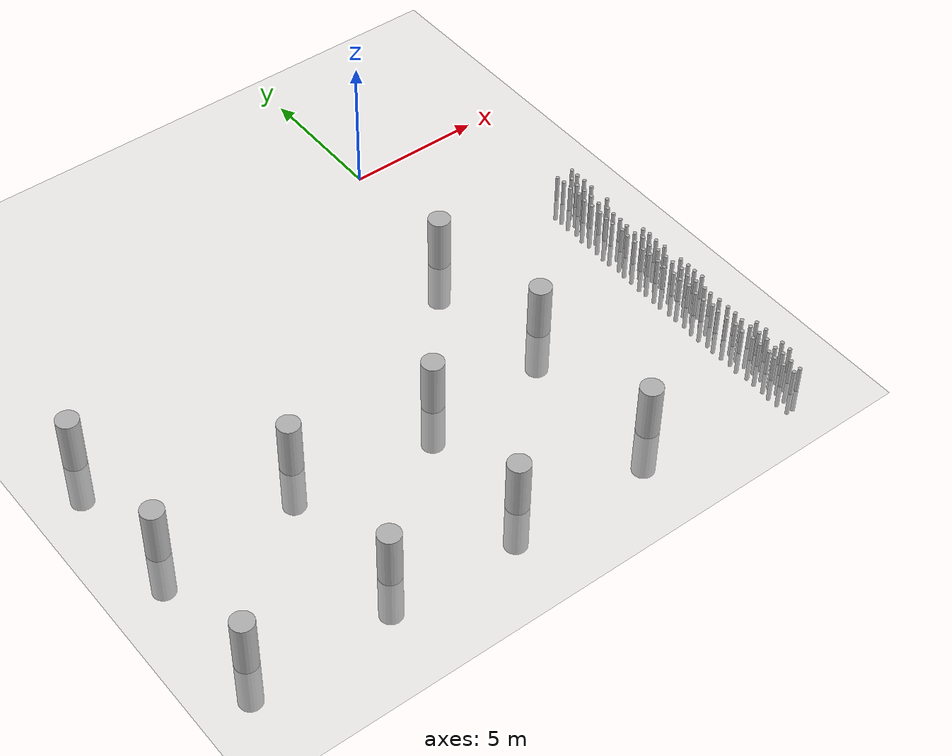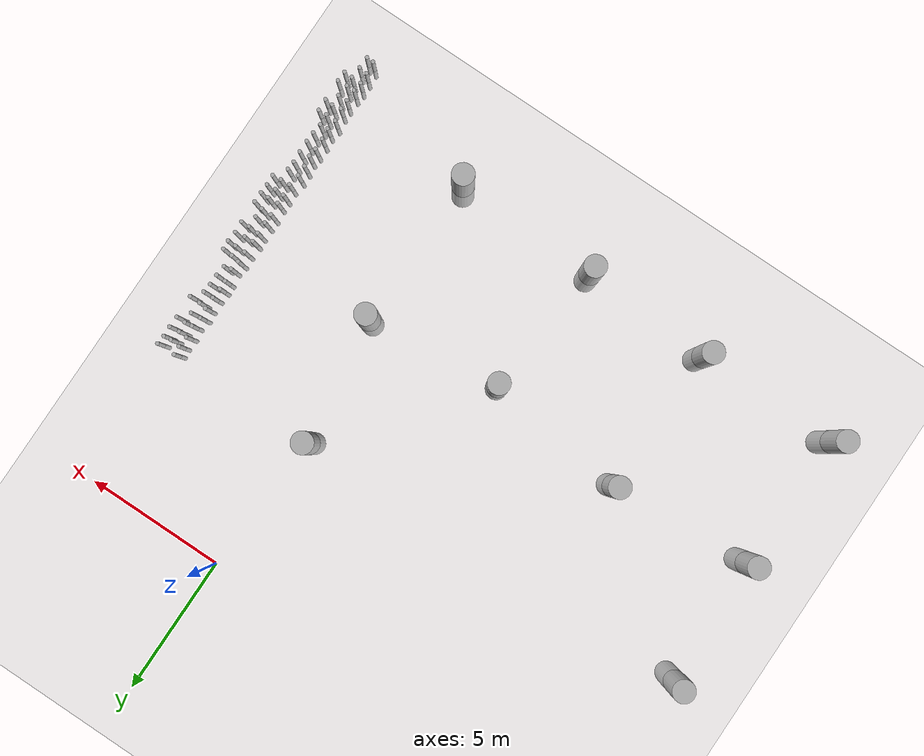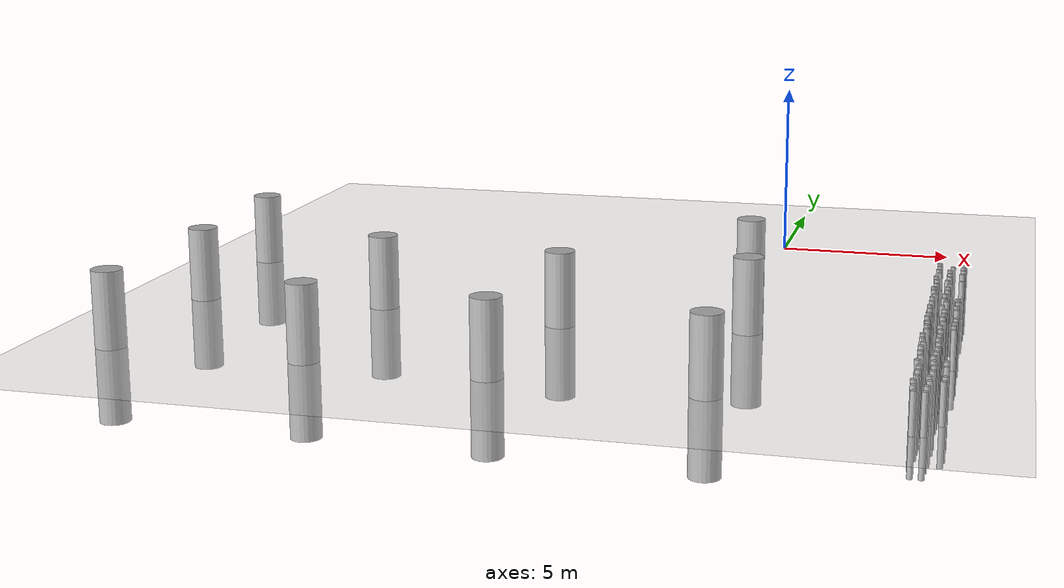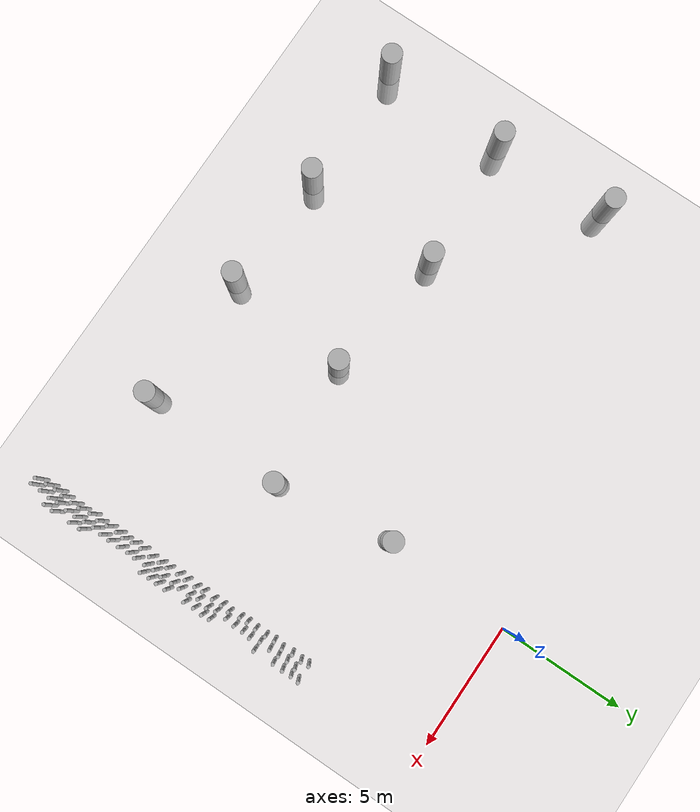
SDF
<sdf version="1.7">
 <world name="farmland_world">
  <model name="ground_plane">
   <static>1</static>
   <link name="link">
    <collision name="collision">
     <geometry><plane><normal>0 0 1</normal><size>40.0 40.0</size></plane></geometry>
     <surface><friction><ode><mu>100</mu><mu2>50</mu2></ode></friction></surface>
    </collision>
    <visual name="visual">
     <cast_shadows>0</cast_shadows>
     <geometry><plane><normal>0 0 1</normal><size>40.0 40.0</size></plane></geometry>
     <material>
      <script><uri>file://media/materials/scripts/gazebo.material</uri><name>Gazebo/Grey</name></script>
     </material>
    </visual>
   </link>
  </model>
  <model name="tree_1_0">
   <static>1</static>
   <link name="link">
    <collision name="collision">
     <geometry><cylinder><radius>0.4</radius><length>4.0</length></cylinder></geometry>
     <surface><friction><ode><mu>100</mu><mu2>50</mu2></ode></friction></surface>
    </collision>
    <visual name="visual">
     <geometry><cylinder><radius>0.4</radius><length>4.0</length></cylinder></geometry>
    </visual>
   </link>
   <pose>0.2540669946374212 -15.38786394240226 0 0 0 1.5707963267948966</pose>
  </model>
  <model name="tree_1_1">
   <static>1</static>
   <link name="link">
    <collision name="collision">
     <geometry><cylinder><radius>0.4</radius><length>4.0</length></cylinder></geometry>
     <surface><friction><ode><mu>100</mu><mu2>50</mu2></ode></friction></surface>
    </collision>
    <visual name="visual">
     <geometry><cylinder><radius>0.4</radius><length>4.0</length></cylinder></geometry>
    </visual>
   </link>
   <pose>-5.051842792831774 -15.291867667403281 0 0 0 1.5707963267948966</pose>
  </model>
  <model name="tree_1_2">
   <static>1</static>
   <link name="link">
    <collision name="collision">
     <geometry><cylinder><radius>0.4</radius><length>4.0</length></cylinder></geometry>
     <surface><friction><ode><mu>100</mu><mu2>50</mu2></ode></friction></surface>
    </collision>
    <visual name="visual">
     <geometry><cylinder><radius>0.4</radius><length>4.0</length></cylinder></geometry>
    </visual>
   </link>
   <pose>-9.82998977859006 -15.08229638216011 0 0 0 1.5707963267948966</pose>
  </model>
  <model name="tree_1_3">
   <static>1</static>
   <link name="link">
    <collision name="collision">
     <geometry><cylinder><radius>0.4</radius><length>4.0</length></cylinder></geometry>
     <surface><friction><ode><mu>100</mu><mu2>50</mu2></ode></friction></surface>
    </collision>
    <visual name="visual">
     <geometry><cylinder><radius>0.4</radius><length>4.0</length></cylinder></geometry>
    </visual>
   </link>
   <pose>-15.065093844090462 -15.095315168979154 0 0 0 1.5707963267948966</pose>
  </model>
  <model name="tree_1_4">
   <static>1</static>
   <link name="link">
    <collision name="collision">
     <geometry><cylinder><radius>0.4</radius><length>4.0</length></cylinder></geometry>
     <surface><friction><ode><mu>100</mu><mu2>50</mu2></ode></friction></surface>
    </collision>
    <visual name="visual">
     <geometry><cylinder><radius>0.4</radius><length>4.0</length></cylinder></geometry>
    </visual>
   </link>
   <pose>0.3341858291401403 -9.767742681914724 0 0 0 1.5707963267948966</pose>
  </model>
  <model name="tree_1_5">
   <static>1</static>
   <link name="link">
    <collision name="collision">
     <geometry><cylinder><radius>0.4</radius><length>4.0</length></cylinder></geometry>
     <surface><friction><ode><mu>100</mu><mu2>50</mu2></ode></friction></surface>
    </collision>
    <visual name="visual">
     <geometry><cylinder><radius>0.4</radius><length>4.0</length></cylinder></geometry>
    </visual>
   </link>
   <pose>-4.568847083646271 -10.325073099994544 0 0 0 1.5707963267948966</pose>
  </model>
  <model name="tree_1_6">
   <static>1</static>
   <link name="link">
    <collision name="collision">
     <geometry><cylinder><radius>0.4</radius><length>4.0</length></cylinder></geometry>
     <surface><friction><ode><mu>100</mu><mu2>50</mu2></ode></friction></surface>
    </collision>
    <visual name="visual">
     <geometry><cylinder><radius>0.4</radius><length>4.0</length></cylinder></geometry>
    </visual>
   </link>
   <pose>-9.728997222041995 -9.698990593612 0 0 0 1.5707963267948966</pose>
  </model>
  <model name="tree_1_7">
   <static>1</static>
   <link name="link">
    <collision name="collision">
     <geometry><cylinder><radius>0.4</radius><length>4.0</length></cylinder></geometry>
     <surface><friction><ode><mu>100</mu><mu2>50</mu2></ode></friction></surface>
    </collision>
    <visual name="visual">
     <geometry><cylinder><radius>0.4</radius><length>4.0</length></cylinder></geometry>
    </visual>
   </link>
   <pose>-14.920578026793763 -10.0460575825015 0 0 0 1.5707963267948966</pose>
  </model>
  <model name="tree_1_8">
   <static>1</static>
   <link name="link">
    <collision name="collision">
     <geometry><cylinder><radius>0.4</radius><length>4.0</length></cylinder></geometry>
     <surface><friction><ode><mu>100</mu><mu2>50</mu2></ode></friction></surface>
    </collision>
    <visual name="visual">
     <geometry><cylinder><radius>0.4</radius><length>4.0</length></cylinder></geometry>
    </visual>
   </link>
   <pose>-0.3144932957957587 -5.122929289410163 0 0 0 1.5707963267948966</pose>
  </model>
  <model name="tree_1_11">
   <static>1</static>
   <link name="link">
    <collision name="collision">
     <geometry><cylinder><radius>0.4</radius><length>4.0</length></cylinder></geometry>
     <surface><friction><ode><mu>100</mu><mu2>50</mu2></ode></friction></surface>
    </collision>
    <visual name="visual">
     <geometry><cylinder><radius>0.4</radius><length>4.0</length></cylinder></geometry>
    </visual>
   </link>
   <pose>-15.086728282497244 -5.36786975470952 0 0 0 1.5707963267948966</pose>
  </model>
  <model name="tree_3_8">
   <static>1</static>
   <link name="link">
    <collision name="collision">
     <geometry><cylinder><radius>0.07</radius><length>2.0</length></cylinder></geometry>
     <surface><friction><ode><mu>100</mu><mu2>50</mu2></ode></friction></surface>
    </collision>
    <visual name="visual">
     <geometry><cylinder><radius>0.07</radius><length>2.0</length></cylinder></geometry>
    </visual>
   </link>
   <pose>4.999346822458375 -5.117888623179846 0 0 0 0</pose>
  </model>
  <model name="tree_3_9">
   <static>1</static>
   <link name="link">
    <collision name="collision">
     <geometry><cylinder><radius>0.07</radius><length>2.0</length></cylinder></geometry>
     <surface><friction><ode><mu>100</mu><mu2>50</mu2></ode></friction></surface>
    </collision>
    <visual name="visual">
     <geometry><cylinder><radius>0.07</radius><length>2.0</length></cylinder></geometry>
    </visual>
   </link>
   <pose>5.0233898209033025 -5.432092514143336 0 0 0 0</pose>
  </model>
  <model name="tree_3_10">
   <static>1</static>
   <link name="link">
    <collision name="collision">
     <geometry><cylinder><radius>0.07</radius><length>2.0</length></cylinder></geometry>
     <surface><friction><ode><mu>100</mu><mu2>50</mu2></ode></friction></surface>
    </collision>
    <visual name="visual">
     <geometry><cylinder><radius>0.07</radius><length>2.0</length></cylinder></geometry>
    </visual>
   </link>
   <pose>4.994291506147252 -5.823625055868227 0 0 0 0</pose>
  </model>
  <model name="tree_3_11">
   <static>1</static>
   <link name="link">
    <collision name="collision">
     <geometry><cylinder><radius>0.07</radius><length>2.0</length></cylinder></geometry>
     <surface><friction><ode><mu>100</mu><mu2>50</mu2></ode></friction></surface>
    </collision>
    <visual name="visual">
     <geometry><cylinder><radius>0.07</radius><length>2.0</length></cylinder></geometry>
    </visual>
   </link>
   <pose>5.0497059251139635 -6.242002284667855 0 0 0 0</pose>
  </model>
  <model name="tree_3_12">
   <static>1</static>
   <link name="link">
    <collision name="collision">
     <geometry><cylinder><radius>0.07</radius><length>2.0</length></cylinder></geometry>
     <surface><friction><ode><mu>100</mu><mu2>50</mu2></ode></friction></surface>
    </collision>
    <visual name="visual">
     <geometry><cylinder><radius>0.07</radius><length>2.0</length></cylinder></geometry>
    </visual>
   </link>
   <pose>4.97458573716142 -6.619090289960563 0 0 0 0</pose>
  </model>
  <model name="tree_3_13">
   <static>1</static>
   <link name="link">
    <collision name="collision">
     <geometry><cylinder><radius>0.07</radius><length>2.0</length></cylinder></geometry>
     <surface><friction><ode><mu>100</mu><mu2>50</mu2></ode></friction></surface>
    </collision>
    <visual name="visual">
     <geometry><cylinder><radius>0.07</radius><length>2.0</length></cylinder></geometry>
    </visual>
   </link>
   <pose>5.011115408017612 -6.979648178607706 0 0 0 0</pose>
  </model>
  <model name="tree_3_14">
   <static>1</static>
   <link name="link">
    <collision name="collision">
     <geometry><cylinder><radius>0.07</radius><length>2.0</length></cylinder></geometry>
     <surface><friction><ode><mu>100</mu><mu2>50</mu2></ode></friction></surface>
    </collision>
    <visual name="visual">
     <geometry><cylinder><radius>0.07</radius><length>2.0</length></cylinder></geometry>
    </visual>
   </link>
   <pose>5.007831291233298 -7.414810000429624 0 0 0 0</pose>
  </model>
  <model name="tree_3_15">
   <static>1</static>
   <link name="link">
    <collision name="collision">
     <geometry><cylinder><radius>0.07</radius><length>2.0</length></cylinder></geometry>
     <surface><friction><ode><mu>100</mu><mu2>50</mu2></ode></friction></surface>
    </collision>
    <visual name="visual">
     <geometry><cylinder><radius>0.07</radius><length>2.0</length></cylinder></geometry>
    </visual>
   </link>
   <pose>4.972915663874423 -7.78935166714598 0 0 0 0</pose>
  </model>
  <model name="tree_3_16">
   <static>1</static>
   <link name="link">
    <collision name="collision">
     <geometry><cylinder><radius>0.07</radius><length>2.0</length></cylinder></geometry>
     <surface><friction><ode><mu>100</mu><mu2>50</mu2></ode></friction></surface>
    </collision>
    <visual name="visual">
     <geometry><cylinder><radius>0.07</radius><length>2.0</length></cylinder></geometry>
    </visual>
   </link>
   <pose>4.984007666288333 -8.108426710210507 0 0 0 0</pose>
  </model>
  <model name="tree_3_17">
   <static>1</static>
   <link name="link">
    <collision name="collision">
     <geometry><cylinder><radius>0.07</radius><length>2.0</length></cylinder></geometry>
     <surface><friction><ode><mu>100</mu><mu2>50</mu2></ode></friction></surface>
    </collision>
    <visual name="visual">
     <geometry><cylinder><radius>0.07</radius><length>2.0</length></cylinder></geometry>
    </visual>
   </link>
   <pose>5.04829961444361 -8.557682776209393 0 0 0 0</pose>
  </model>
  <model name="tree_3_18">
   <static>1</static>
   <link name="link">
    <collision name="collision">
     <geometry><cylinder><radius>0.07</radius><length>2.0</length></cylinder></geometry>
     <surface><friction><ode><mu>100</mu><mu2>50</mu2></ode></friction></surface>
    </collision>
    <visual name="visual">
     <geometry><cylinder><radius>0.07</radius><length>2.0</length></cylinder></geometry>
    </visual>
   </link>
   <pose>4.990040240308751 -8.894895072469216 0 0 0 0</pose>
  </model>
  <model name="tree_3_19">
   <static>1</static>
   <link name="link">
    <collision name="collision">
     <geometry><cylinder><radius>0.07</radius><length>2.0</length></cylinder></geometry>
     <surface><friction><ode><mu>100</mu><mu2>50</mu2></ode></friction></surface>
    </collision>
    <visual name="visual">
     <geometry><cylinder><radius>0.07</radius><length>2.0</length></cylinder></geometry>
    </visual>
   </link>
   <pose>4.995447982326307 -9.282934316098306 0 0 0 0</pose>
  </model>
  <model name="tree_3_20">
   <static>1</static>
   <link name="link">
    <collision name="collision">
     <geometry><cylinder><radius>0.07</radius><length>2.0</length></cylinder></geometry>
     <surface><friction><ode><mu>100</mu><mu2>50</mu2></ode></friction></surface>
    </collision>
    <visual name="visual">
     <geometry><cylinder><radius>0.07</radius><length>2.0</length></cylinder></geometry>
    </visual>
   </link>
   <pose>4.970099136664407 -9.729626298001653 0 0 0 0</pose>
  </model>
  <model name="tree_3_21">
   <static>1</static>
   <link name="link">
    <collision name="collision">
     <geometry><cylinder><radius>0.07</radius><length>2.0</length></cylinder></geometry>
     <surface><friction><ode><mu>100</mu><mu2>50</mu2></ode></friction></surface>
    </collision>
    <visual name="visual">
     <geometry><cylinder><radius>0.07</radius><length>2.0</length></cylinder></geometry>
    </visual>
   </link>
   <pose>4.991530070331363 -10.055534574343481 0 0 0 0</pose>
  </model>
  <model name="tree_3_22">
   <static>1</static>
   <link name="link">
    <collision name="collision">
     <geometry><cylinder><radius>0.07</radius><length>2.0</length></cylinder></geometry>
     <surface><friction><ode><mu>100</mu><mu2>50</mu2></ode></friction></surface>
    </collision>
    <visual name="visual">
     <geometry><cylinder><radius>0.07</radius><length>2.0</length></cylinder></geometry>
    </visual>
   </link>
   <pose>4.984498523004487 -10.477624777847547 0 0 0 0</pose>
  </model>
  <model name="tree_3_23">
   <static>1</static>
   <link name="link">
    <collision name="collision">
     <geometry><cylinder><radius>0.07</radius><length>2.0</length></cylinder></geometry>
     <surface><friction><ode><mu>100</mu><mu2>50</mu2></ode></friction></surface>
    </collision>
    <visual name="visual">
     <geometry><cylinder><radius>0.07</radius><length>2.0</length></cylinder></geometry>
    </visual>
   </link>
   <pose>4.96801317017482 -10.818968923391138 0 0 0 0</pose>
  </model>
  <model name="tree_3_24">
   <static>1</static>
   <link name="link">
    <collision name="collision">
     <geometry><cylinder><radius>0.07</radius><length>2.0</length></cylinder></geometry>
     <surface><friction><ode><mu>100</mu><mu2>50</mu2></ode></friction></surface>
    </collision>
    <visual name="visual">
     <geometry><cylinder><radius>0.07</radius><length>2.0</length></cylinder></geometry>
    </visual>
   </link>
   <pose>5.0032470985808475 -11.265103971879112 0 0 0 0</pose>
  </model>
  <model name="tree_3_25">
   <static>1</static>
   <link name="link">
    <collision name="collision">
     <geometry><cylinder><radius>0.07</radius><length>2.0</length></cylinder></geometry>
     <surface><friction><ode><mu>100</mu><mu2>50</mu2></ode></friction></surface>
    </collision>
    <visual name="visual">
     <geometry><cylinder><radius>0.07</radius><length>2.0</length></cylinder></geometry>
    </visual>
   </link>
   <pose>4.997418522056089 -11.601864335592976 0 0 0 0</pose>
  </model>
  <model name="tree_3_26">
   <static>1</static>
   <link name="link">
    <collision name="collision">
     <geometry><cylinder><radius>0.07</radius><length>2.0</length></cylinder></geometry>
     <surface><friction><ode><mu>100</mu><mu2>50</mu2></ode></friction></surface>
    </collision>
    <visual name="visual">
     <geometry><cylinder><radius>0.07</radius><length>2.0</length></cylinder></geometry>
    </visual>
   </link>
   <pose>5.025079420664147 -12.008580229304183 0 0 0 0</pose>
  </model>
  <model name="tree_3_27">
   <static>1</static>
   <link name="link">
    <collision name="collision">
     <geometry><cylinder><radius>0.07</radius><length>2.0</length></cylinder></geometry>
     <surface><friction><ode><mu>100</mu><mu2>50</mu2></ode></friction></surface>
    </collision>
    <visual name="visual">
     <geometry><cylinder><radius>0.07</radius><length>2.0</length></cylinder></geometry>
    </visual>
   </link>
   <pose>4.956278513814736 -12.42666884954331 0 0 0 0</pose>
  </model>
  <model name="tree_3_28">
   <static>1</static>
   <link name="link">
    <collision name="collision">
     <geometry><cylinder><radius>0.07</radius><length>2.0</length></cylinder></geometry>
     <surface><friction><ode><mu>100</mu><mu2>50</mu2></ode></friction></surface>
    </collision>
    <visual name="visual">
     <geometry><cylinder><radius>0.07</radius><length>2.0</length></cylinder></geometry>
    </visual>
   </link>
   <pose>4.961890367560947 -12.80278903983509 0 0 0 0</pose>
  </model>
  <model name="tree_3_29">
   <static>1</static>
   <link name="link">
    <collision name="collision">
     <geometry><cylinder><radius>0.07</radius><length>2.0</length></cylinder></geometry>
     <surface><friction><ode><mu>100</mu><mu2>50</mu2></ode></friction></surface>
    </collision>
    <visual name="visual">
     <geometry><cylinder><radius>0.07</radius><length>2.0</length></cylinder></geometry>
    </visual>
   </link>
   <pose>5.021302931288229 -13.184394870217396 0 0 0 0</pose>
  </model>
  <model name="tree_3_30">
   <static>1</static>
   <link name="link">
    <collision name="collision">
     <geometry><cylinder><radius>0.07</radius><length>2.0</length></cylinder></geometry>
     <surface><friction><ode><mu>100</mu><mu2>50</mu2></ode></friction></surface>
    </collision>
    <visual name="visual">
     <geometry><cylinder><radius>0.07</radius><length>2.0</length></cylinder></geometry>
    </visual>
   </link>
   <pose>4.979685329325851 -13.494809803908115 0 0 0 0</pose>
  </model>
  <model name="tree_3_31">
   <static>1</static>
   <link name="link">
    <collision name="collision">
     <geometry><cylinder><radius>0.07</radius><length>2.0</length></cylinder></geometry>
     <surface><friction><ode><mu>100</mu><mu2>50</mu2></ode></friction></surface>
    </collision>
    <visual name="visual">
     <geometry><cylinder><radius>0.07</radius><length>2.0</length></cylinder></geometry>
    </visual>
   </link>
   <pose>4.987538303684851 -13.905843898070634 0 0 0 0</pose>
  </model>
  <model name="tree_3_32">
   <static>1</static>
   <link name="link">
    <collision name="collision">
     <geometry><cylinder><radius>0.07</radius><length>2.0</length></cylinder></geometry>
     <surface><friction><ode><mu>100</mu><mu2>50</mu2></ode></friction></surface>
    </collision>
    <visual name="visual">
     <geometry><cylinder><radius>0.07</radius><length>2.0</length></cylinder></geometry>
    </visual>
   </link>
   <pose>5.026190120053602 -14.298834856073046 0 0 0 0</pose>
  </model>
  <model name="tree_3_33">
   <static>1</static>
   <link name="link">
    <collision name="collision">
     <geometry><cylinder><radius>0.07</radius><length>2.0</length></cylinder></geometry>
     <surface><friction><ode><mu>100</mu><mu2>50</mu2></ode></friction></surface>
    </collision>
    <visual name="visual">
     <geometry><cylinder><radius>0.07</radius><length>2.0</length></cylinder></geometry>
    </visual>
   </link>
   <pose>4.966935010101443 -14.662043042989211 0 0 0 0</pose>
  </model>
  <model name="tree_3_34">
   <static>1</static>
   <link name="link">
    <collision name="collision">
     <geometry><cylinder><radius>0.07</radius><length>2.0</length></cylinder></geometry>
     <surface><friction><ode><mu>100</mu><mu2>50</mu2></ode></friction></surface>
    </collision>
    <visual name="visual">
     <geometry><cylinder><radius>0.07</radius><length>2.0</length></cylinder></geometry>
    </visual>
   </link>
   <pose>5.038163282550224 -15.110687508830262 0 0 0 0</pose>
  </model>
  <model name="tree_3_35">
   <static>1</static>
   <link name="link">
    <collision name="collision">
     <geometry><cylinder><radius>0.07</radius><length>2.0</length></cylinder></geometry>
     <surface><friction><ode><mu>100</mu><mu2>50</mu2></ode></friction></surface>
    </collision>
    <visual name="visual">
     <geometry><cylinder><radius>0.07</radius><length>2.0</length></cylinder></geometry>
    </visual>
   </link>
   <pose>5.034635849927462 -15.452563131653614 0 0 0 0</pose>
  </model>
  <model name="tree_3_36">
   <static>1</static>
   <link name="link">
    <collision name="collision">
     <geometry><cylinder><radius>0.07</radius><length>2.0</length></cylinder></geometry>
     <surface><friction><ode><mu>100</mu><mu2>50</mu2></ode></friction></surface>
    </collision>
    <visual name="visual">
     <geometry><cylinder><radius>0.07</radius><length>2.0</length></cylinder></geometry>
    </visual>
   </link>
   <pose>5.023838630749299 -15.879250077412296 0 0 0 0</pose>
  </model>
  <model name="tree_3_37">
   <static>1</static>
   <link name="link">
    <collision name="collision">
     <geometry><cylinder><radius>0.07</radius><length>2.0</length></cylinder></geometry>
     <surface><friction><ode><mu>100</mu><mu2>50</mu2></ode></friction></surface>
    </collision>
    <visual name="visual">
     <geometry><cylinder><radius>0.07</radius><length>2.0</length></cylinder></geometry>
    </visual>
   </link>
   <pose>4.980753839021567 -16.203383754138216 0 0 0 0</pose>
  </model>
  <model name="tree_3_38">
   <static>1</static>
   <link name="link">
    <collision name="collision">
     <geometry><cylinder><radius>0.07</radius><length>2.0</length></cylinder></geometry>
     <surface><friction><ode><mu>100</mu><mu2>50</mu2></ode></friction></surface>
    </collision>
    <visual name="visual">
     <geometry><cylinder><radius>0.07</radius><length>2.0</length></cylinder></geometry>
    </visual>
   </link>
   <pose>4.9965406774371175 -16.590310443161016 0 0 0 0</pose>
  </model>
  <model name="tree_3_39">
   <static>1</static>
   <link name="link">
    <collision name="collision">
     <geometry><cylinder><radius>0.07</radius><length>2.0</length></cylinder></geometry>
     <surface><friction><ode><mu>100</mu><mu2>50</mu2></ode></friction></surface>
    </collision>
    <visual name="visual">
     <geometry><cylinder><radius>0.07</radius><length>2.0</length></cylinder></geometry>
    </visual>
   </link>
   <pose>5.033313299084959 -17.037167706015715 0 0 0 0</pose>
  </model>
  <model name="tree_3_49">
   <static>1</static>
   <link name="link">
    <collision name="collision">
     <geometry><cylinder><radius>0.07</radius><length>2.0</length></cylinder></geometry>
     <surface><friction><ode><mu>100</mu><mu2>50</mu2></ode></friction></surface>
    </collision>
    <visual name="visual">
     <geometry><cylinder><radius>0.07</radius><length>2.0</length></cylinder></geometry>
    </visual>
   </link>
   <pose>5.369553990625664 -5.463004009743102 0 0 0 0</pose>
  </model>
  <model name="tree_3_50">
   <static>1</static>
   <link name="link">
    <collision name="collision">
     <geometry><cylinder><radius>0.07</radius><length>2.0</length></cylinder></geometry>
     <surface><friction><ode><mu>100</mu><mu2>50</mu2></ode></friction></surface>
    </collision>
    <visual name="visual">
     <geometry><cylinder><radius>0.07</radius><length>2.0</length></cylinder></geometry>
    </visual>
   </link>
   <pose>5.297141138920362 -5.845477507677606 0 0 0 0</pose>
  </model>
  <model name="tree_3_51">
   <static>1</static>
   <link name="link">
    <collision name="collision">
     <geometry><cylinder><radius>0.07</radius><length>2.0</length></cylinder></geometry>
     <surface><friction><ode><mu>100</mu><mu2>50</mu2></ode></friction></surface>
    </collision>
    <visual name="visual">
     <geometry><cylinder><radius>0.07</radius><length>2.0</length></cylinder></geometry>
    </visual>
   </link>
   <pose>5.323572051776812 -6.206995607616698 0 0 0 0</pose>
  </model>
  <model name="tree_3_52">
   <static>1</static>
   <link name="link">
    <collision name="collision">
     <geometry><cylinder><radius>0.07</radius><length>2.0</length></cylinder></geometry>
     <surface><friction><ode><mu>100</mu><mu2>50</mu2></ode></friction></surface>
    </collision>
    <visual name="visual">
     <geometry><cylinder><radius>0.07</radius><length>2.0</length></cylinder></geometry>
    </visual>
   </link>
   <pose>5.3214190114218365 -6.588524401562481 0 0 0 0</pose>
  </model>
  <model name="tree_3_53">
   <static>1</static>
   <link name="link">
    <collision name="collision">
     <geometry><cylinder><radius>0.07</radius><length>2.0</length></cylinder></geometry>
     <surface><friction><ode><mu>100</mu><mu2>50</mu2></ode></friction></surface>
    </collision>
    <visual name="visual">
     <geometry><cylinder><radius>0.07</radius><length>2.0</length></cylinder></geometry>
    </visual>
   </link>
   <pose>5.280437146111947 -7.027016467444657 0 0 0 0</pose>
  </model>
  <model name="tree_3_54">
   <static>1</static>
   <link name="link">
    <collision name="collision">
     <geometry><cylinder><radius>0.07</radius><length>2.0</length></cylinder></geometry>
     <surface><friction><ode><mu>100</mu><mu2>50</mu2></ode></friction></surface>
    </collision>
    <visual name="visual">
     <geometry><cylinder><radius>0.07</radius><length>2.0</length></cylinder></geometry>
    </visual>
   </link>
   <pose>5.369491425851832 -7.413021863263594 0 0 0 0</pose>
  </model>
  <model name="tree_3_55">
   <static>1</static>
   <link name="link">
    <collision name="collision">
     <geometry><cylinder><radius>0.07</radius><length>2.0</length></cylinder></geometry>
     <surface><friction><ode><mu>100</mu><mu2>50</mu2></ode></friction></surface>
    </collision>
    <visual name="visual">
     <geometry><cylinder><radius>0.07</radius><length>2.0</length></cylinder></geometry>
    </visual>
   </link>
   <pose>5.337631671333587 -7.744069618882502 0 0 0 0</pose>
  </model>
  <model name="tree_3_56">
   <static>1</static>
   <link name="link">
    <collision name="collision">
     <geometry><cylinder><radius>0.07</radius><length>2.0</length></cylinder></geometry>
     <surface><friction><ode><mu>100</mu><mu2>50</mu2></ode></friction></surface>
    </collision>
    <visual name="visual">
     <geometry><cylinder><radius>0.07</radius><length>2.0</length></cylinder></geometry>
    </visual>
   </link>
   <pose>5.335010881188575 -8.115083346918649 0 0 0 0</pose>
  </model>
  <model name="tree_3_57">
   <static>1</static>
   <link name="link">
    <collision name="collision">
     <geometry><cylinder><radius>0.07</radius><length>2.0</length></cylinder></geometry>
     <surface><friction><ode><mu>100</mu><mu2>50</mu2></ode></friction></surface>
    </collision>
    <visual name="visual">
     <geometry><cylinder><radius>0.07</radius><length>2.0</length></cylinder></geometry>
    </visual>
   </link>
   <pose>5.295534720734992 -8.496550123450147 0 0 0 0</pose>
  </model>
  <model name="tree_3_58">
   <static>1</static>
   <link name="link">
    <collision name="collision">
     <geometry><cylinder><radius>0.07</radius><length>2.0</length></cylinder></geometry>
     <surface><friction><ode><mu>100</mu><mu2>50</mu2></ode></friction></surface>
    </collision>
    <visual name="visual">
     <geometry><cylinder><radius>0.07</radius><length>2.0</length></cylinder></geometry>
    </visual>
   </link>
   <pose>5.283004398404149 -8.947092271120622 0 0 0 0</pose>
  </model>
  <model name="tree_3_59">
   <static>1</static>
   <link name="link">
    <collision name="collision">
     <geometry><cylinder><radius>0.07</radius><length>2.0</length></cylinder></geometry>
     <surface><friction><ode><mu>100</mu><mu2>50</mu2></ode></friction></surface>
    </collision>
    <visual name="visual">
     <geometry><cylinder><radius>0.07</radius><length>2.0</length></cylinder></geometry>
    </visual>
   </link>
   <pose>5.3647975767927685 -9.28188963426583 0 0 0 0</pose>
  </model>
  <model name="tree_3_60">
   <static>1</static>
   <link name="link">
    <collision name="collision">
     <geometry><cylinder><radius>0.07</radius><length>2.0</length></cylinder></geometry>
     <surface><friction><ode><mu>100</mu><mu2>50</mu2></ode></friction></surface>
    </collision>
    <visual name="visual">
     <geometry><cylinder><radius>0.07</radius><length>2.0</length></cylinder></geometry>
    </visual>
   </link>
   <pose>5.281490380699221 -9.713153258451607 0 0 0 0</pose>
  </model>
  <model name="tree_3_61">
   <static>1</static>
   <link name="link">
    <collision name="collision">
     <geometry><cylinder><radius>0.07</radius><length>2.0</length></cylinder></geometry>
     <surface><friction><ode><mu>100</mu><mu2>50</mu2></ode></friction></surface>
    </collision>
    <visual name="visual">
     <geometry><cylinder><radius>0.07</radius><length>2.0</length></cylinder></geometry>
    </visual>
   </link>
   <pose>5.356912802526412 -10.075548016746815 0 0 0 0</pose>
  </model>
  <model name="tree_3_62">
   <static>1</static>
   <link name="link">
    <collision name="collision">
     <geometry><cylinder><radius>0.07</radius><length>2.0</length></cylinder></geometry>
     <surface><friction><ode><mu>100</mu><mu2>50</mu2></ode></friction></surface>
    </collision>
    <visual name="visual">
     <geometry><cylinder><radius>0.07</radius><length>2.0</length></cylinder></geometry>
    </visual>
   </link>
   <pose>5.355638168520415 -10.474140444299959 0 0 0 0</pose>
  </model>
  <model name="tree_3_63">
   <static>1</static>
   <link name="link">
    <collision name="collision">
     <geometry><cylinder><radius>0.07</radius><length>2.0</length></cylinder></geometry>
     <surface><friction><ode><mu>100</mu><mu2>50</mu2></ode></friction></surface>
    </collision>
    <visual name="visual">
     <geometry><cylinder><radius>0.07</radius><length>2.0</length></cylinder></geometry>
    </visual>
   </link>
   <pose>5.346314025350475 -10.814164162384527 0 0 0 0</pose>
  </model>
  <model name="tree_3_64">
   <static>1</static>
   <link name="link">
    <collision name="collision">
     <geometry><cylinder><radius>0.07</radius><length>2.0</length></cylinder></geometry>
     <surface><friction><ode><mu>100</mu><mu2>50</mu2></ode></friction></surface>
    </collision>
    <visual name="visual">
     <geometry><cylinder><radius>0.07</radius><length>2.0</length></cylinder></geometry>
    </visual>
   </link>
   <pose>5.37945850664273 -11.249666777575396 0 0 0 0</pose>
  </model>
  <model name="tree_3_65">
   <static>1</static>
   <link name="link">
    <collision name="collision">
     <geometry><cylinder><radius>0.07</radius><length>2.0</length></cylinder></geometry>
     <surface><friction><ode><mu>100</mu><mu2>50</mu2></ode></friction></surface>
    </collision>
    <visual name="visual">
     <geometry><cylinder><radius>0.07</radius><length>2.0</length></cylinder></geometry>
    </visual>
   </link>
   <pose>5.326111459748185 -11.615157325727967 0 0 0 0</pose>
  </model>
  <model name="tree_3_66">
   <static>1</static>
   <link name="link">
    <collision name="collision">
     <geometry><cylinder><radius>0.07</radius><length>2.0</length></cylinder></geometry>
     <surface><friction><ode><mu>100</mu><mu2>50</mu2></ode></friction></surface>
    </collision>
    <visual name="visual">
     <geometry><cylinder><radius>0.07</radius><length>2.0</length></cylinder></geometry>
    </visual>
   </link>
   <pose>5.35730460943747 -11.985975571508753 0 0 0 0</pose>
  </model>
  <model name="tree_3_67">
   <static>1</static>
   <link name="link">
    <collision name="collision">
     <geometry><cylinder><radius>0.07</radius><length>2.0</length></cylinder></geometry>
     <surface><friction><ode><mu>100</mu><mu2>50</mu2></ode></friction></surface>
    </collision>
    <visual name="visual">
     <geometry><cylinder><radius>0.07</radius><length>2.0</length></cylinder></geometry>
    </visual>
   </link>
   <pose>5.364148350680277 -12.415546939003226 0 0 0 0</pose>
  </model>
  <model name="tree_3_68">
   <static>1</static>
   <link name="link">
    <collision name="collision">
     <geometry><cylinder><radius>0.07</radius><length>2.0</length></cylinder></geometry>
     <surface><friction><ode><mu>100</mu><mu2>50</mu2></ode></friction></surface>
    </collision>
    <visual name="visual">
     <geometry><cylinder><radius>0.07</radius><length>2.0</length></cylinder></geometry>
    </visual>
   </link>
   <pose>5.340819951244901 -12.728351183384444 0 0 0 0</pose>
  </model>
  <model name="tree_3_69">
   <static>1</static>
   <link name="link">
    <collision name="collision">
     <geometry><cylinder><radius>0.07</radius><length>2.0</length></cylinder></geometry>
     <surface><friction><ode><mu>100</mu><mu2>50</mu2></ode></friction></surface>
    </collision>
    <visual name="visual">
     <geometry><cylinder><radius>0.07</radius><length>2.0</length></cylinder></geometry>
    </visual>
   </link>
   <pose>5.369482750127217 -13.127351402749753 0 0 0 0</pose>
  </model>
  <model name="tree_3_70">
   <static>1</static>
   <link name="link">
    <collision name="collision">
     <geometry><cylinder><radius>0.07</radius><length>2.0</length></cylinder></geometry>
     <surface><friction><ode><mu>100</mu><mu2>50</mu2></ode></friction></surface>
    </collision>
    <visual name="visual">
     <geometry><cylinder><radius>0.07</radius><length>2.0</length></cylinder></geometry>
    </visual>
   </link>
   <pose>5.36804896801917 -13.551901541757015 0 0 0 0</pose>
  </model>
  <model name="tree_3_71">
   <static>1</static>
   <link name="link">
    <collision name="collision">
     <geometry><cylinder><radius>0.07</radius><length>2.0</length></cylinder></geometry>
     <surface><friction><ode><mu>100</mu><mu2>50</mu2></ode></friction></surface>
    </collision>
    <visual name="visual">
     <geometry><cylinder><radius>0.07</radius><length>2.0</length></cylinder></geometry>
    </visual>
   </link>
   <pose>5.359340785382039 -13.91733179047962 0 0 0 0</pose>
  </model>
  <model name="tree_3_72">
   <static>1</static>
   <link name="link">
    <collision name="collision">
     <geometry><cylinder><radius>0.07</radius><length>2.0</length></cylinder></geometry>
     <surface><friction><ode><mu>100</mu><mu2>50</mu2></ode></friction></surface>
    </collision>
    <visual name="visual">
     <geometry><cylinder><radius>0.07</radius><length>2.0</length></cylinder></geometry>
    </visual>
   </link>
   <pose>5.31325980384666 -14.276177351158815 0 0 0 0</pose>
  </model>
  <model name="tree_3_73">
   <static>1</static>
   <link name="link">
    <collision name="collision">
     <geometry><cylinder><radius>0.07</radius><length>2.0</length></cylinder></geometry>
     <surface><friction><ode><mu>100</mu><mu2>50</mu2></ode></friction></surface>
    </collision>
    <visual name="visual">
     <geometry><cylinder><radius>0.07</radius><length>2.0</length></cylinder></geometry>
    </visual>
   </link>
   <pose>5.3360469752278235 -14.669328309326012 0 0 0 0</pose>
  </model>
  <model name="tree_3_74">
   <static>1</static>
   <link name="link">
    <collision name="collision">
     <geometry><cylinder><radius>0.07</radius><length>2.0</length></cylinder></geometry>
     <surface><friction><ode><mu>100</mu><mu2>50</mu2></ode></friction></surface>
    </collision>
    <visual name="visual">
     <geometry><cylinder><radius>0.07</radius><length>2.0</length></cylinder></geometry>
    </visual>
   </link>
   <pose>5.36412992429356 -15.052891042409628 0 0 0 0</pose>
  </model>
  <model name="tree_3_75">
   <static>1</static>
   <link name="link">
    <collision name="collision">
     <geometry><cylinder><radius>0.07</radius><length>2.0</length></cylinder></geometry>
     <surface><friction><ode><mu>100</mu><mu2>50</mu2></ode></friction></surface>
    </collision>
    <visual name="visual">
     <geometry><cylinder><radius>0.07</radius><length>2.0</length></cylinder></geometry>
    </visual>
   </link>
   <pose>5.36150582300458 -15.441435607520027 0 0 0 0</pose>
  </model>
  <model name="tree_3_76">
   <static>1</static>
   <link name="link">
    <collision name="collision">
     <geometry><cylinder><radius>0.07</radius><length>2.0</length></cylinder></geometry>
     <surface><friction><ode><mu>100</mu><mu2>50</mu2></ode></friction></surface>
    </collision>
    <visual name="visual">
     <geometry><cylinder><radius>0.07</radius><length>2.0</length></cylinder></geometry>
    </visual>
   </link>
   <pose>5.3070264523374036 -15.871998949487963 0 0 0 0</pose>
  </model>
  <model name="tree_3_77">
   <static>1</static>
   <link name="link">
    <collision name="collision">
     <geometry><cylinder><radius>0.07</radius><length>2.0</length></cylinder></geometry>
     <surface><friction><ode><mu>100</mu><mu2>50</mu2></ode></friction></surface>
    </collision>
    <visual name="visual">
     <geometry><cylinder><radius>0.07</radius><length>2.0</length></cylinder></geometry>
    </visual>
   </link>
   <pose>5.338149591891575 -16.21132842006368 0 0 0 0</pose>
  </model>
  <model name="tree_3_78">
   <static>1</static>
   <link name="link">
    <collision name="collision">
     <geometry><cylinder><radius>0.07</radius><length>2.0</length></cylinder></geometry>
     <surface><friction><ode><mu>100</mu><mu2>50</mu2></ode></friction></surface>
    </collision>
    <visual name="visual">
     <geometry><cylinder><radius>0.07</radius><length>2.0</length></cylinder></geometry>
    </visual>
   </link>
   <pose>5.298920855320827 -16.624613246204145 0 0 0 0</pose>
  </model>
  <model name="tree_3_79">
   <static>1</static>
   <link name="link">
    <collision name="collision">
     <geometry><cylinder><radius>0.07</radius><length>2.0</length></cylinder></geometry>
     <surface><friction><ode><mu>100</mu><mu2>50</mu2></ode></friction></surface>
    </collision>
    <visual name="visual">
     <geometry><cylinder><radius>0.07</radius><length>2.0</length></cylinder></geometry>
    </visual>
   </link>
   <pose>5.284694205590336 -17.04651244436851 0 0 0 0</pose>
  </model>
  <model name="tree_3_88">
   <static>1</static>
   <link name="link">
    <collision name="collision">
     <geometry><cylinder><radius>0.07</radius><length>2.0</length></cylinder></geometry>
     <surface><friction><ode><mu>100</mu><mu2>50</mu2></ode></friction></surface>
    </collision>
    <visual name="visual">
     <geometry><cylinder><radius>0.07</radius><length>2.0</length></cylinder></geometry>
    </visual>
   </link>
   <pose>5.669090994908194 -5.112741382429169 0 0 0 0</pose>
  </model>
  <model name="tree_3_89">
   <static>1</static>
   <link name="link">
    <collision name="collision">
     <geometry><cylinder><radius>0.07</radius><length>2.0</length></cylinder></geometry>
     <surface><friction><ode><mu>100</mu><mu2>50</mu2></ode></friction></surface>
    </collision>
    <visual name="visual">
     <geometry><cylinder><radius>0.07</radius><length>2.0</length></cylinder></geometry>
    </visual>
   </link>
   <pose>5.637608994105566 -5.436571169772749 0 0 0 0</pose>
  </model>
  <model name="tree_3_90">
   <static>1</static>
   <link name="link">
    <collision name="collision">
     <geometry><cylinder><radius>0.07</radius><length>2.0</length></cylinder></geometry>
     <surface><friction><ode><mu>100</mu><mu2>50</mu2></ode></friction></surface>
    </collision>
    <visual name="visual">
     <geometry><cylinder><radius>0.07</radius><length>2.0</length></cylinder></geometry>
    </visual>
   </link>
   <pose>5.6540412076478415 -5.800958691730683 0 0 0 0</pose>
  </model>
  <model name="tree_3_91">
   <static>1</static>
   <link name="link">
    <collision name="collision">
     <geometry><cylinder><radius>0.07</radius><length>2.0</length></cylinder></geometry>
     <surface><friction><ode><mu>100</mu><mu2>50</mu2></ode></friction></surface>
    </collision>
    <visual name="visual">
     <geometry><cylinder><radius>0.07</radius><length>2.0</length></cylinder></geometry>
    </visual>
   </link>
   <pose>5.642344726001271 -6.207722481606232 0 0 0 0</pose>
  </model>
  <model name="tree_3_93">
   <static>1</static>
   <link name="link">
    <collision name="collision">
     <geometry><cylinder><radius>0.07</radius><length>2.0</length></cylinder></geometry>
     <surface><friction><ode><mu>100</mu><mu2>50</mu2></ode></friction></surface>
    </collision>
    <visual name="visual">
     <geometry><cylinder><radius>0.07</radius><length>2.0</length></cylinder></geometry>
    </visual>
   </link>
   <pose>5.6590751590456 -7.031525528601 0 0 0 0</pose>
  </model>
  <model name="tree_3_98">
   <static>1</static>
   <link name="link">
    <collision name="collision">
     <geometry><cylinder><radius>0.07</radius><length>2.0</length></cylinder></geometry>
     <surface><friction><ode><mu>100</mu><mu2>50</mu2></ode></friction></surface>
    </collision>
    <visual name="visual">
     <geometry><cylinder><radius>0.07</radius><length>2.0</length></cylinder></geometry>
    </visual>
   </link>
   <pose>5.6369153958825535 -8.971472431446559 0 0 0 0</pose>
  </model>
  <model name="tree_3_99">
   <static>1</static>
   <link name="link">
    <collision name="collision">
     <geometry><cylinder><radius>0.07</radius><length>2.0</length></cylinder></geometry>
     <surface><friction><ode><mu>100</mu><mu2>50</mu2></ode></friction></surface>
    </collision>
    <visual name="visual">
     <geometry><cylinder><radius>0.07</radius><length>2.0</length></cylinder></geometry>
    </visual>
   </link>
   <pose>5.661859621350171 -9.287107206529335 0 0 0 0</pose>
  </model>
  <model name="tree_3_100">
   <static>1</static>
   <link name="link">
    <collision name="collision">
     <geometry><cylinder><radius>0.07</radius><length>2.0</length></cylinder></geometry>
     <surface><friction><ode><mu>100</mu><mu2>50</mu2></ode></friction></surface>
    </collision>
    <visual name="visual">
     <geometry><cylinder><radius>0.07</radius><length>2.0</length></cylinder></geometry>
    </visual>
   </link>
   <pose>5.627291681789604 -9.662518354115512 0 0 0 0</pose>
  </model>
  <model name="tree_3_101">
   <static>1</static>
   <link name="link">
    <collision name="collision">
     <geometry><cylinder><radius>0.07</radius><length>2.0</length></cylinder></geometry>
     <surface><friction><ode><mu>100</mu><mu2>50</mu2></ode></friction></surface>
    </collision>
    <visual name="visual">
     <geometry><cylinder><radius>0.07</radius><length>2.0</length></cylinder></geometry>
    </visual>
   </link>
   <pose>5.6509561678122395 -10.073137293175629 0 0 0 0</pose>
  </model>
  <model name="tree_3_103">
   <static>1</static>
   <link name="link">
    <collision name="collision">
     <geometry><cylinder><radius>0.07</radius><length>2.0</length></cylinder></geometry>
     <surface><friction><ode><mu>100</mu><mu2>50</mu2></ode></friction></surface>
    </collision>
    <visual name="visual">
     <geometry><cylinder><radius>0.07</radius><length>2.0</length></cylinder></geometry>
    </visual>
   </link>
   <pose>5.673042348986418 -10.876948959863594 0 0 0 0</pose>
  </model>
  <model name="tree_3_104">
   <static>1</static>
   <link name="link">
    <collision name="collision">
     <geometry><cylinder><radius>0.07</radius><length>2.0</length></cylinder></geometry>
     <surface><friction><ode><mu>100</mu><mu2>50</mu2></ode></friction></surface>
    </collision>
    <visual name="visual">
     <geometry><cylinder><radius>0.07</radius><length>2.0</length></cylinder></geometry>
    </visual>
   </link>
   <pose>5.663728599647732 -11.254612795203522 0 0 0 0</pose>
  </model>
  <model name="tree_3_105">
   <static>1</static>
   <link name="link">
    <collision name="collision">
     <geometry><cylinder><radius>0.07</radius><length>2.0</length></cylinder></geometry>
     <surface><friction><ode><mu>100</mu><mu2>50</mu2></ode></friction></surface>
    </collision>
    <visual name="visual">
     <geometry><cylinder><radius>0.07</radius><length>2.0</length></cylinder></geometry>
    </visual>
   </link>
   <pose>5.650332063241028 -11.585847608490464 0 0 0 0</pose>
  </model>
  <model name="tree_3_106">
   <static>1</static>
   <link name="link">
    <collision name="collision">
     <geometry><cylinder><radius>0.07</radius><length>2.0</length></cylinder></geometry>
     <surface><friction><ode><mu>100</mu><mu2>50</mu2></ode></friction></surface>
    </collision>
    <visual name="visual">
     <geometry><cylinder><radius>0.07</radius><length>2.0</length></cylinder></geometry>
    </visual>
   </link>
   <pose>5.668787574325908 -11.954312329010266 0 0 0 0</pose>
  </model>
  <model name="tree_3_113">
   <static>1</static>
   <link name="link">
    <collision name="collision">
     <geometry><cylinder><radius>0.07</radius><length>2.0</length></cylinder></geometry>
     <surface><friction><ode><mu>100</mu><mu2>50</mu2></ode></friction></surface>
    </collision>
    <visual name="visual">
     <geometry><cylinder><radius>0.07</radius><length>2.0</length></cylinder></geometry>
    </visual>
   </link>
   <pose>5.630408481907402 -14.656851662141365 0 0 0 0</pose>
  </model>
  <model name="tree_3_114">
   <static>1</static>
   <link name="link">
    <collision name="collision">
     <geometry><cylinder><radius>0.07</radius><length>2.0</length></cylinder></geometry>
     <surface><friction><ode><mu>100</mu><mu2>50</mu2></ode></friction></surface>
    </collision>
    <visual name="visual">
     <geometry><cylinder><radius>0.07</radius><length>2.0</length></cylinder></geometry>
    </visual>
   </link>
   <pose>5.641793377695395 -15.083994391601367 0 0 0 0</pose>
  </model>
  <model name="tree_3_116">
   <static>1</static>
   <link name="link">
    <collision name="collision">
     <geometry><cylinder><radius>0.07</radius><length>2.0</length></cylinder></geometry>
     <surface><friction><ode><mu>100</mu><mu2>50</mu2></ode></friction></surface>
    </collision>
    <visual name="visual">
     <geometry><cylinder><radius>0.07</radius><length>2.0</length></cylinder></geometry>
    </visual>
   </link>
   <pose>5.6556492855659 -15.845214297934843 0 0 0 0</pose>
  </model>
  <model name="tree_3_117">
   <static>1</static>
   <link name="link">
    <collision name="collision">
     <geometry><cylinder><radius>0.07</radius><length>2.0</length></cylinder></geometry>
     <surface><friction><ode><mu>100</mu><mu2>50</mu2></ode></friction></surface>
    </collision>
    <visual name="visual">
     <geometry><cylinder><radius>0.07</radius><length>2.0</length></cylinder></geometry>
    </visual>
   </link>
   <pose>5.634072961583477 -16.218034563581778 0 0 0 0</pose>
  </model>
 </world>
</sdf>
